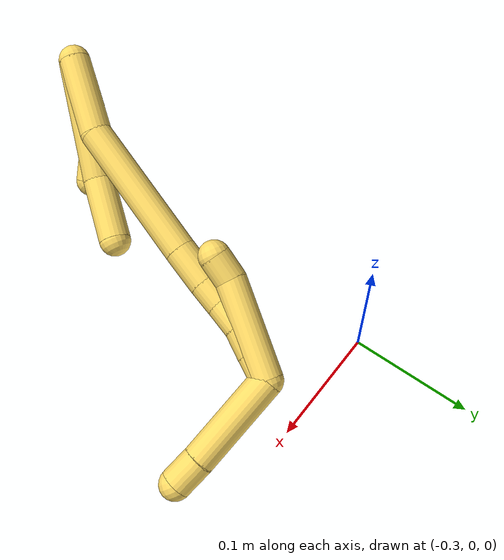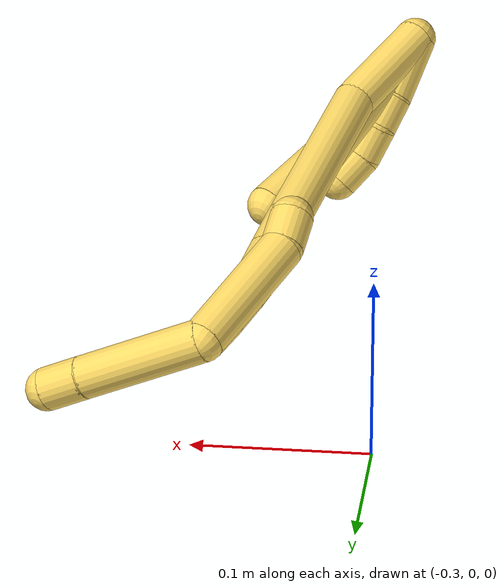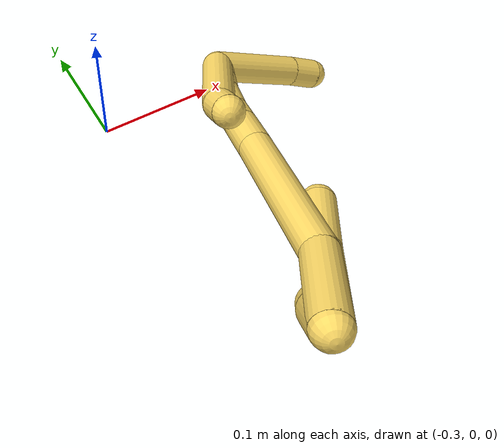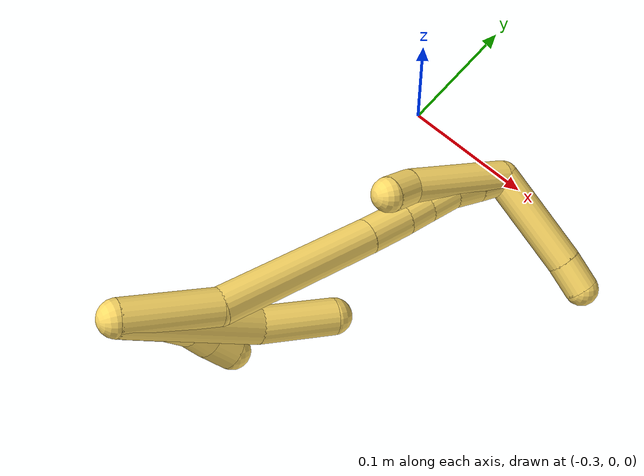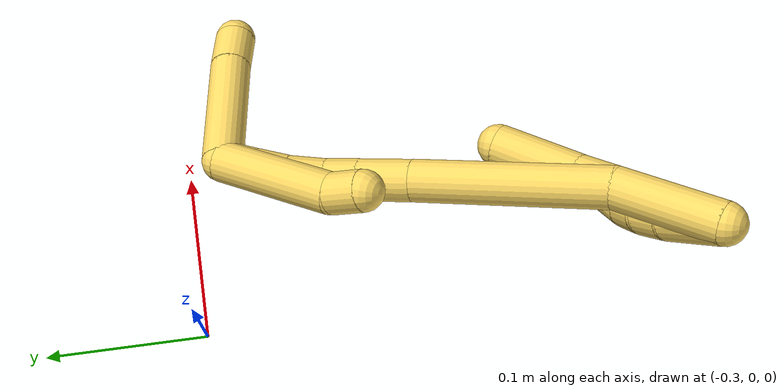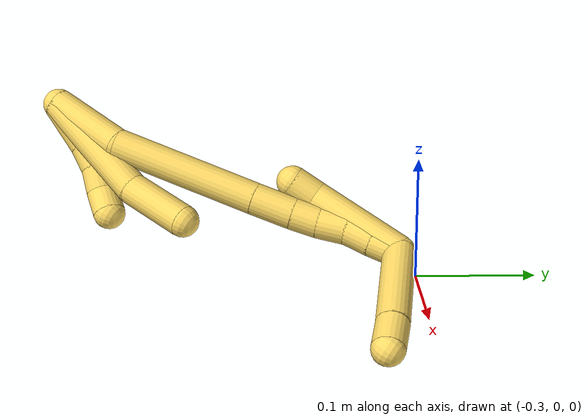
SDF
<sdf version="1.7">
 <world name="default">
  <model name="5">
   <static>0</static>
   <link name="5">
    <collision name="collision-cylinder-e_1_2_8">
     <pose>-0.005049 -0.010875 -0.047283 2.91553 -0.103697 -0.857579</pose>
     <geometry><cylinder><radius>0.0125</radius><length>0.097559</length></cylinder></geometry>
     <surface>
      <friction><ode><mu>1.16</mu><mu2>1.16</mu2><slip1>0</slip1><slip2>0</slip2></ode></friction>
      <contact><ode><kp>1e+06</kp><kd>1</kd><max_vel>0</max_vel><min_depth>0.001</min_depth></ode></contact>
     </surface>
    </collision>
    <visual name="visual-cylinder-e_1_2_8">
     <pose>-0.005049 -0.010875 -0.047283 2.91553 -0.103697 -0.857579</pose>
     <geometry><cylinder><radius>0.0125</radius><length>0.097559</length></cylinder></geometry>
     <material><ambient>1 0.858824 0.4 1</ambient></material>
    </visual>
    <collision name="collision-cylinder-e_2_8_6">
     <pose>-0.006171 -0.024569 -0.120337 3.03265 0.150335 1.88824</pose>
     <geometry><cylinder><radius>0.0125</radius><length>0.052441</length></cylinder></geometry>
     <surface>
      <friction><ode><mu>1.16</mu><mu2>1.16</mu2><slip1>0</slip1><slip2>0</slip2></ode></friction>
      <contact><ode><kp>1e+06</kp><kd>1</kd><max_vel>0</max_vel><min_depth>0.001</min_depth></ode></contact>
     </surface>
    </collision>
    <visual name="visual-cylinder-e_2_8_6">
     <pose>-0.006171 -0.024569 -0.120337 3.03265 0.150335 1.88824</pose>
     <geometry><cylinder><radius>0.0125</radius><length>0.052441</length></cylinder></geometry>
     <material><ambient>1 0.858824 0.4 1</ambient></material>
    </visual>
    <collision name="collision-cylinder-e_1_2_9">
     <pose>-0.007515 -0.003402 -0.018075 2.95554 -0.387905 -2.25472</pose>
     <geometry><cylinder><radius>0.0125</radius><length>0.039737</length></cylinder></geometry>
     <surface>
      <friction><ode><mu>1.16</mu><mu2>1.16</mu2><slip1>0</slip1><slip2>0</slip2></ode></friction>
      <contact><ode><kp>1e+06</kp><kd>1</kd><max_vel>0</max_vel><min_depth>0.001</min_depth></ode></contact>
     </surface>
    </collision>
    <visual name="visual-cylinder-e_1_2_9">
     <pose>-0.007515 -0.003402 -0.018075 2.95554 -0.387905 -2.25472</pose>
     <geometry><cylinder><radius>0.0125</radius><length>0.039737</length></cylinder></geometry>
     <material><ambient>1 0.858824 0.4 1</ambient></material>
    </visual>
    <collision name="collision-cylinder-e_2_9_10">
     <pose>-0.018962 -0.009859 -0.044915 2.80629 -0.400663 -1.75197</pose>
     <geometry><cylinder><radius>0.0125</radius><length>0.020161</length></cylinder></geometry>
     <surface>
      <friction><ode><mu>1.16</mu><mu2>1.16</mu2><slip1>0</slip1><slip2>0</slip2></ode></friction>
      <contact><ode><kp>1e+06</kp><kd>1</kd><max_vel>0</max_vel><min_depth>0.001</min_depth></ode></contact>
     </surface>
    </collision>
    <visual name="visual-cylinder-e_2_9_10">
     <pose>-0.018962 -0.009859 -0.044915 2.80629 -0.400663 -1.75197</pose>
     <geometry><cylinder><radius>0.0125</radius><length>0.020161</length></cylinder></geometry>
     <material><ambient>1 0.858824 0.4 1</ambient></material>
    </visual>
    <collision name="collision-cylinder-e_3_10_11">
     <pose>-0.027726 -0.017527 -0.061177 2.5899 -0.502032 -1.47212</pose>
     <geometry><cylinder><radius>0.0125</radius><length>0.020082</length></cylinder></geometry>
     <surface>
      <friction><ode><mu>1.16</mu><mu2>1.16</mu2><slip1>0</slip1><slip2>0</slip2></ode></friction>
      <contact><ode><kp>1e+06</kp><kd>1</kd><max_vel>0</max_vel><min_depth>0.001</min_depth></ode></contact>
     </surface>
    </collision>
    <visual name="visual-cylinder-e_3_10_11">
     <pose>-0.027726 -0.017527 -0.061177 2.5899 -0.502032 -1.47212</pose>
     <geometry><cylinder><radius>0.0125</radius><length>0.020082</length></cylinder></geometry>
     <material><ambient>1 0.858824 0.4 1</ambient></material>
    </visual>
    <collision name="collision-cylinder-e_4_11_5">
     <pose>-0.034654 -0.027501 -0.076862 2.56194 -0.210995 -0.682365</pose>
     <geometry><cylinder><radius>0.0125</radius><length>0.020019</length></cylinder></geometry>
     <surface>
      <friction><ode><mu>1.16</mu><mu2>1.16</mu2><slip1>0</slip1><slip2>0</slip2></ode></friction>
      <contact><ode><kp>1e+06</kp><kd>1</kd><max_vel>0</max_vel><min_depth>0.001</min_depth></ode></contact>
     </surface>
    </collision>
    <visual name="visual-cylinder-e_4_11_5">
     <pose>-0.034654 -0.027501 -0.076862 2.56194 -0.210995 -0.682365</pose>
     <geometry><cylinder><radius>0.0125</radius><length>0.020019</length></cylinder></geometry>
     <material><ambient>1 0.858824 0.4 1</ambient></material>
    </visual>
    <collision name="collision-cylinder-e_1_2_12">
     <pose>0.002788 -0.003164 -0.031927 3.0428 0.086692 1.44033</pose>
     <geometry><cylinder><radius>0.0125</radius><length>0.064409</length></cylinder></geometry>
     <surface>
      <friction><ode><mu>1.16</mu><mu2>1.16</mu2><slip1>0</slip1><slip2>0</slip2></ode></friction>
      <contact><ode><kp>1e+06</kp><kd>1</kd><max_vel>0</max_vel><min_depth>0.001</min_depth></ode></contact>
     </surface>
    </collision>
    <visual name="visual-cylinder-e_1_2_12">
     <pose>0.002788 -0.003164 -0.031927 3.0428 0.086692 1.44033</pose>
     <geometry><cylinder><radius>0.0125</radius><length>0.064409</length></cylinder></geometry>
     <material><ambient>1 0.858824 0.4 1</ambient></material>
    </visual>
    <collision name="collision-cylinder-e_2_12_13">
     <pose>0.009218 0.006306 -0.120462 -2.92199 0.062692 -0.554208</pose>
     <geometry><cylinder><radius>0.0125</radius><length>0.11623</length></cylinder></geometry>
     <surface>
      <friction><ode><mu>1.16</mu><mu2>1.16</mu2><slip1>0</slip1><slip2>0</slip2></ode></friction>
      <contact><ode><kp>1e+06</kp><kd>1</kd><max_vel>0</max_vel><min_depth>0.001</min_depth></ode></contact>
     </surface>
    </collision>
    <visual name="visual-cylinder-e_2_12_13">
     <pose>0.009218 0.006306 -0.120462 -2.92199 0.062692 -0.554208</pose>
     <geometry><cylinder><radius>0.0125</radius><length>0.11623</length></cylinder></geometry>
     <material><ambient>1 0.858824 0.4 1</ambient></material>
    </visual>
    <collision name="collision-cylinder-e_3_13_14">
     <pose>0.013825 0.02277 -0.192626 -2.90028 0.060263 -0.487313</pose>
     <geometry><cylinder><radius>0.0125</radius><length>0.032098</length></cylinder></geometry>
     <surface>
      <friction><ode><mu>1.16</mu><mu2>1.16</mu2><slip1>0</slip1><slip2>0</slip2></ode></friction>
      <contact><ode><kp>1e+06</kp><kd>1</kd><max_vel>0</max_vel><min_depth>0.001</min_depth></ode></contact>
     </surface>
    </collision>
    <visual name="visual-cylinder-e_3_13_14">
     <pose>0.013825 0.02277 -0.192626 -2.90028 0.060263 -0.487313</pose>
     <geometry><cylinder><radius>0.0125</radius><length>0.032098</length></cylinder></geometry>
     <material><ambient>1 0.858824 0.4 1</ambient></material>
    </visual>
    <collision name="collision-cylinder-e_4_14_15">
     <pose>0.015661 0.029415 -0.218106 -2.86505 0.084062 -0.586968</pose>
     <geometry><cylinder><radius>0.0125</radius><length>0.020706</length></cylinder></geometry>
     <surface>
      <friction><ode><mu>1.16</mu><mu2>1.16</mu2><slip1>0</slip1><slip2>0</slip2></ode></friction>
      <contact><ode><kp>1e+06</kp><kd>1</kd><max_vel>0</max_vel><min_depth>0.001</min_depth></ode></contact>
     </surface>
    </collision>
    <visual name="visual-cylinder-e_4_14_15">
     <pose>0.015661 0.029415 -0.218106 -2.86505 0.084062 -0.586968</pose>
     <geometry><cylinder><radius>0.0125</radius><length>0.020706</length></cylinder></geometry>
     <material><ambient>1 0.858824 0.4 1</ambient></material>
    </visual>
    <collision name="collision-cylinder-e_5_15_16">
     <pose>0.019014 0.035305 -0.238835 -2.86446 0.217576 -1.32879</pose>
     <geometry><cylinder><radius>0.0125</radius><length>0.023008</length></cylinder></geometry>
     <surface>
      <friction><ode><mu>1.16</mu><mu2>1.16</mu2><slip1>0</slip1><slip2>0</slip2></ode></friction>
      <contact><ode><kp>1e+06</kp><kd>1</kd><max_vel>0</max_vel><min_depth>0.001</min_depth></ode></contact>
     </surface>
    </collision>
    <visual name="visual-cylinder-e_5_15_16">
     <pose>0.019014 0.035305 -0.238835 -2.86446 0.217576 -1.32879</pose>
     <geometry><cylinder><radius>0.0125</radius><length>0.023008</length></cylinder></geometry>
     <material><ambient>1 0.858824 0.4 1</ambient></material>
    </visual>
    <collision name="collision-cylinder-e_6_16_17">
     <pose>0.02279 0.038957 -0.260409 -3.08789 0.119269 -2.29617</pose>
     <geometry><cylinder><radius>0.0125</radius><length>0.021725</length></cylinder></geometry>
     <surface>
      <friction><ode><mu>1.16</mu><mu2>1.16</mu2><slip1>0</slip1><slip2>0</slip2></ode></friction>
      <contact><ode><kp>1e+06</kp><kd>1</kd><max_vel>0</max_vel><min_depth>0.001</min_depth></ode></contact>
     </surface>
    </collision>
    <visual name="visual-cylinder-e_6_16_17">
     <pose>0.02279 0.038957 -0.260409 -3.08789 0.119269 -2.29617</pose>
     <geometry><cylinder><radius>0.0125</radius><length>0.021725</length></cylinder></geometry>
     <material><ambient>1 0.858824 0.4 1</ambient></material>
    </visual>
    <collision name="collision-cylinder-e_7_17_1">
     <pose>0.026026 0.04032 -0.281887 -3.06852 0.179131 -2.36852</pose>
     <geometry><cylinder><radius>0.0125</radius><length>0.021824</length></cylinder></geometry>
     <surface>
      <friction><ode><mu>1.16</mu><mu2>1.16</mu2><slip1>0</slip1><slip2>0</slip2></ode></friction>
      <contact><ode><kp>1e+06</kp><kd>1</kd><max_vel>0</max_vel><min_depth>0.001</min_depth></ode></contact>
     </surface>
    </collision>
    <visual name="visual-cylinder-e_7_17_1">
     <pose>0.026026 0.04032 -0.281887 -3.06852 0.179131 -2.36852</pose>
     <geometry><cylinder><radius>0.0125</radius><length>0.021824</length></cylinder></geometry>
     <material><ambient>1 0.858824 0.4 1</ambient></material>
    </visual>
    <collision name="collision-cylinder-e_1_1_18">
     <pose>0.029836 0.006935 -0.308642 2.00984 0.049394 0.077743</pose>
     <geometry><cylinder><radius>0.0125</radius><length>0.07559</length></cylinder></geometry>
     <surface>
      <friction><ode><mu>1.16</mu><mu2>1.16</mu2><slip1>0</slip1><slip2>0</slip2></ode></friction>
      <contact><ode><kp>1e+06</kp><kd>1</kd><max_vel>0</max_vel><min_depth>0.001</min_depth></ode></contact>
     </surface>
    </collision>
    <visual name="visual-cylinder-e_1_1_18">
     <pose>0.029836 0.006935 -0.308642 2.00984 0.049394 0.077743</pose>
     <geometry><cylinder><radius>0.0125</radius><length>0.07559</length></cylinder></geometry>
     <material><ambient>1 0.858824 0.4 1</ambient></material>
    </visual>
    <collision name="collision-cylinder-e_2_18_4">
     <pose>0.031802 -0.038539 -0.329285 1.95694 0.008124 0.012073</pose>
     <geometry><cylinder><radius>0.0125</radius><length>0.02441</length></cylinder></geometry>
     <surface>
      <friction><ode><mu>1.16</mu><mu2>1.16</mu2><slip1>0</slip1><slip2>0</slip2></ode></friction>
      <contact><ode><kp>1e+06</kp><kd>1</kd><max_vel>0</max_vel><min_depth>0.001</min_depth></ode></contact>
     </surface>
    </collision>
    <visual name="visual-cylinder-e_2_18_4">
     <pose>0.031802 -0.038539 -0.329285 1.95694 0.008124 0.012073</pose>
     <geometry><cylinder><radius>0.0125</radius><length>0.02441</length></cylinder></geometry>
     <material><ambient>1 0.858824 0.4 1</ambient></material>
    </visual>
    <collision name="collision-cylinder-e_1_1_19">
     <pose>0.025919 0.043536 -0.253562 -0.062219 -0.05241 0.001631</pose>
     <geometry><cylinder><radius>0.0125</radius><length>0.078327</length></cylinder></geometry>
     <surface>
      <friction><ode><mu>1.16</mu><mu2>1.16</mu2><slip1>0</slip1><slip2>0</slip2></ode></friction>
      <contact><ode><kp>1e+06</kp><kd>1</kd><max_vel>0</max_vel><min_depth>0.001</min_depth></ode></contact>
     </surface>
    </collision>
    <visual name="visual-cylinder-e_1_1_19">
     <pose>0.025919 0.043536 -0.253562 -0.062219 -0.05241 0.001631</pose>
     <geometry><cylinder><radius>0.0125</radius><length>0.078327</length></cylinder></geometry>
     <material><ambient>1 0.858824 0.4 1</ambient></material>
    </visual>
    <collision name="collision-cylinder-e_2_19_3">
     <pose>0.025795 0.044153 -0.20402 0.171023 0.178826 0.01537</pose>
     <geometry><cylinder><radius>0.0125</radius><length>0.021673</length></cylinder></geometry>
     <surface>
      <friction><ode><mu>1.16</mu><mu2>1.16</mu2><slip1>0</slip1><slip2>0</slip2></ode></friction>
      <contact><ode><kp>1e+06</kp><kd>1</kd><max_vel>0</max_vel><min_depth>0.001</min_depth></ode></contact>
     </surface>
    </collision>
    <visual name="visual-cylinder-e_2_19_3">
     <pose>0.025795 0.044153 -0.20402 0.171023 0.178826 0.01537</pose>
     <geometry><cylinder><radius>0.0125</radius><length>0.021673</length></cylinder></geometry>
     <material><ambient>1 0.858824 0.4 1</ambient></material>
    </visual>
    <collision name="collision-sphere-3">
     <pose>0.027722 0.042338 -0.193511 0 -0 0</pose>
     <geometry><sphere><radius>0.0125</radius></sphere></geometry>
     <surface>
      <friction><ode><mu>1.16</mu><mu2>1.16</mu2><slip1>0</slip1><slip2>0</slip2></ode></friction>
      <contact><ode><kp>1e+06</kp><kd>1</kd><max_vel>0</max_vel><min_depth>0.001</min_depth></ode></contact>
     </surface>
    </collision>
    <visual name="visual-sphere-3">
     <pose>0.027722 0.042338 -0.193511 0 -0 0</pose>
     <geometry><sphere><radius>0.0125</radius></sphere></geometry>
     <material><ambient>1 0.858824 0.4 1</ambient></material>
    </visual>
    <collision name="collision-sphere-19">
     <pose>0.023867 0.045967 -0.214528 0 -0 0</pose>
     <geometry><sphere><radius>0.0125</radius></sphere></geometry>
     <surface>
      <friction><ode><mu>1.16</mu><mu2>1.16</mu2><slip1>0</slip1><slip2>0</slip2></ode></friction>
      <contact><ode><kp>1e+06</kp><kd>1</kd><max_vel>0</max_vel><min_depth>0.001</min_depth></ode></contact>
     </surface>
    </collision>
    <visual name="visual-sphere-19">
     <pose>0.023867 0.045967 -0.214528 0 -0 0</pose>
     <geometry><sphere><radius>0.0125</radius></sphere></geometry>
     <material><ambient>1 0.858824 0.4 1</ambient></material>
    </visual>
    <collision name="collision-sphere-11">
     <pose>-0.032558 -0.02214 -0.068673 0 -0 0</pose>
     <geometry><sphere><radius>0.0125</radius></sphere></geometry>
     <surface>
      <friction><ode><mu>1.16</mu><mu2>1.16</mu2><slip1>0</slip1><slip2>0</slip2></ode></friction>
      <contact><ode><kp>1e+06</kp><kd>1</kd><max_vel>0</max_vel><min_depth>0.001</min_depth></ode></contact>
     </surface>
    </collision>
    <visual name="visual-sphere-11">
     <pose>-0.032558 -0.02214 -0.068673 0 -0 0</pose>
     <geometry><sphere><radius>0.0125</radius></sphere></geometry>
     <material><ambient>1 0.858824 0.4 1</ambient></material>
    </visual>
    <collision name="collision-sphere-10">
     <pose>-0.022894 -0.012913 -0.053681 0 -0 0</pose>
     <geometry><sphere><radius>0.0125</radius></sphere></geometry>
     <surface>
      <friction><ode><mu>1.16</mu><mu2>1.16</mu2><slip1>0</slip1><slip2>0</slip2></ode></friction>
      <contact><ode><kp>1e+06</kp><kd>1</kd><max_vel>0</max_vel><min_depth>0.001</min_depth></ode></contact>
     </surface>
    </collision>
    <visual name="visual-sphere-10">
     <pose>-0.022894 -0.012913 -0.053681 0 -0 0</pose>
     <geometry><sphere><radius>0.0125</radius></sphere></geometry>
     <material><ambient>1 0.858824 0.4 1</ambient></material>
    </visual>
    <collision name="collision-sphere-6">
     <pose>-0.002244 -0.027388 -0.146108 0 -0 0</pose>
     <geometry><sphere><radius>0.0125</radius></sphere></geometry>
     <surface>
      <friction><ode><mu>1.16</mu><mu2>1.16</mu2><slip1>0</slip1><slip2>0</slip2></ode></friction>
      <contact><ode><kp>1e+06</kp><kd>1</kd><max_vel>0</max_vel><min_depth>0.001</min_depth></ode></contact>
     </surface>
    </collision>
    <visual name="visual-sphere-6">
     <pose>-0.002244 -0.027388 -0.146108 0 -0 0</pose>
     <geometry><sphere><radius>0.0125</radius></sphere></geometry>
     <material><ambient>1 0.858824 0.4 1</ambient></material>
    </visual>
    <collision name="collision-sphere-9">
     <pose>-0.015031 -0.006805 -0.03615 0 -0 0</pose>
     <geometry><sphere><radius>0.0125</radius></sphere></geometry>
     <surface>
      <friction><ode><mu>1.16</mu><mu2>1.16</mu2><slip1>0</slip1><slip2>0</slip2></ode></friction>
      <contact><ode><kp>1e+06</kp><kd>1</kd><max_vel>0</max_vel><min_depth>0.001</min_depth></ode></contact>
     </surface>
    </collision>
    <visual name="visual-sphere-9">
     <pose>-0.015031 -0.006805 -0.03615 0 -0 0</pose>
     <geometry><sphere><radius>0.0125</radius></sphere></geometry>
     <material><ambient>1 0.858824 0.4 1</ambient></material>
    </visual>
    <collision name="collision-sphere-2">
     <geometry><sphere><radius>0.0125</radius></sphere></geometry>
     <surface>
      <friction><ode><mu>1.16</mu><mu2>1.16</mu2><slip1>0</slip1><slip2>0</slip2></ode></friction>
      <contact><ode><kp>1e+06</kp><kd>1</kd><max_vel>0</max_vel><min_depth>0.001</min_depth></ode></contact>
     </surface>
    </collision>
    <visual name="visual-sphere-2">
     <geometry><sphere><radius>0.0125</radius></sphere></geometry>
     <material><ambient>1 0.858824 0.4 1</ambient></material>
    </visual>
    <collision name="collision-sphere-8">
     <pose>-0.010098 -0.02175 -0.094566 0 -0 0</pose>
     <geometry><sphere><radius>0.0125</radius></sphere></geometry>
     <surface>
      <friction><ode><mu>1.16</mu><mu2>1.16</mu2><slip1>0</slip1><slip2>0</slip2></ode></friction>
      <contact><ode><kp>1e+06</kp><kd>1</kd><max_vel>0</max_vel><min_depth>0.001</min_depth></ode></contact>
     </surface>
    </collision>
    <visual name="visual-sphere-8">
     <pose>-0.010098 -0.02175 -0.094566 0 -0 0</pose>
     <geometry><sphere><radius>0.0125</radius></sphere></geometry>
     <material><ambient>1 0.858824 0.4 1</ambient></material>
    </visual>
    <collision name="collision-sphere-5">
     <pose>-0.036751 -0.032862 -0.085051 0 -0 0</pose>
     <geometry><sphere><radius>0.0125</radius></sphere></geometry>
     <surface>
      <friction><ode><mu>1.16</mu><mu2>1.16</mu2><slip1>0</slip1><slip2>0</slip2></ode></friction>
      <contact><ode><kp>1e+06</kp><kd>1</kd><max_vel>0</max_vel><min_depth>0.001</min_depth></ode></contact>
     </surface>
    </collision>
    <visual name="visual-sphere-5">
     <pose>-0.036751 -0.032862 -0.085051 0 -0 0</pose>
     <geometry><sphere><radius>0.0125</radius></sphere></geometry>
     <material><ambient>1 0.858824 0.4 1</ambient></material>
    </visual>
    <collision name="collision-sphere-12">
     <pose>0.005577 -0.006329 -0.063854 0 -0 0</pose>
     <geometry><sphere><radius>0.0125</radius></sphere></geometry>
     <surface>
      <friction><ode><mu>1.16</mu><mu2>1.16</mu2><slip1>0</slip1><slip2>0</slip2></ode></friction>
      <contact><ode><kp>1e+06</kp><kd>1</kd><max_vel>0</max_vel><min_depth>0.001</min_depth></ode></contact>
     </surface>
    </collision>
    <visual name="visual-sphere-12">
     <pose>0.005577 -0.006329 -0.063854 0 -0 0</pose>
     <geometry><sphere><radius>0.0125</radius></sphere></geometry>
     <material><ambient>1 0.858824 0.4 1</ambient></material>
    </visual>
    <collision name="collision-sphere-13">
     <pose>0.012859 0.018941 -0.17707 0 -0 0</pose>
     <geometry><sphere><radius>0.0125</radius></sphere></geometry>
     <surface>
      <friction><ode><mu>1.16</mu><mu2>1.16</mu2><slip1>0</slip1><slip2>0</slip2></ode></friction>
      <contact><ode><kp>1e+06</kp><kd>1</kd><max_vel>0</max_vel><min_depth>0.001</min_depth></ode></contact>
     </surface>
    </collision>
    <visual name="visual-sphere-13">
     <pose>0.012859 0.018941 -0.17707 0 -0 0</pose>
     <geometry><sphere><radius>0.0125</radius></sphere></geometry>
     <material><ambient>1 0.858824 0.4 1</ambient></material>
    </visual>
    <collision name="collision-sphere-14">
     <pose>0.014792 0.026598 -0.208181 0 -0 0</pose>
     <geometry><sphere><radius>0.0125</radius></sphere></geometry>
     <surface>
      <friction><ode><mu>1.16</mu><mu2>1.16</mu2><slip1>0</slip1><slip2>0</slip2></ode></friction>
      <contact><ode><kp>1e+06</kp><kd>1</kd><max_vel>0</max_vel><min_depth>0.001</min_depth></ode></contact>
     </surface>
    </collision>
    <visual name="visual-sphere-14">
     <pose>0.014792 0.026598 -0.208181 0 -0 0</pose>
     <geometry><sphere><radius>0.0125</radius></sphere></geometry>
     <material><ambient>1 0.858824 0.4 1</ambient></material>
    </visual>
    <collision name="collision-sphere-15">
     <pose>0.01653 0.032232 -0.228031 0 -0 0</pose>
     <geometry><sphere><radius>0.0125</radius></sphere></geometry>
     <surface>
      <friction><ode><mu>1.16</mu><mu2>1.16</mu2><slip1>0</slip1><slip2>0</slip2></ode></friction>
      <contact><ode><kp>1e+06</kp><kd>1</kd><max_vel>0</max_vel><min_depth>0.001</min_depth></ode></contact>
     </surface>
    </collision>
    <visual name="visual-sphere-15">
     <pose>0.01653 0.032232 -0.228031 0 -0 0</pose>
     <geometry><sphere><radius>0.0125</radius></sphere></geometry>
     <material><ambient>1 0.858824 0.4 1</ambient></material>
    </visual>
    <collision name="collision-sphere-16">
     <pose>0.021497 0.038378 -0.249639 0 -0 0</pose>
     <geometry><sphere><radius>0.0125</radius></sphere></geometry>
     <surface>
      <friction><ode><mu>1.16</mu><mu2>1.16</mu2><slip1>0</slip1><slip2>0</slip2></ode></friction>
      <contact><ode><kp>1e+06</kp><kd>1</kd><max_vel>0</max_vel><min_depth>0.001</min_depth></ode></contact>
     </surface>
    </collision>
    <visual name="visual-sphere-16">
     <pose>0.021497 0.038378 -0.249639 0 -0 0</pose>
     <geometry><sphere><radius>0.0125</radius></sphere></geometry>
     <material><ambient>1 0.858824 0.4 1</ambient></material>
    </visual>
    <collision name="collision-sphere-17">
     <pose>0.024082 0.039536 -0.271179 0 -0 0</pose>
     <geometry><sphere><radius>0.0125</radius></sphere></geometry>
     <surface>
      <friction><ode><mu>1.16</mu><mu2>1.16</mu2><slip1>0</slip1><slip2>0</slip2></ode></friction>
      <contact><ode><kp>1e+06</kp><kd>1</kd><max_vel>0</max_vel><min_depth>0.001</min_depth></ode></contact>
     </surface>
    </collision>
    <visual name="visual-sphere-17">
     <pose>0.024082 0.039536 -0.271179 0 -0 0</pose>
     <geometry><sphere><radius>0.0125</radius></sphere></geometry>
     <material><ambient>1 0.858824 0.4 1</ambient></material>
    </visual>
    <collision name="collision-sphere-1">
     <pose>0.02797 0.041104 -0.292596 0 -0 0</pose>
     <geometry><sphere><radius>0.0125</radius></sphere></geometry>
     <surface>
      <friction><ode><mu>1.16</mu><mu2>1.16</mu2><slip1>0</slip1><slip2>0</slip2></ode></friction>
      <contact><ode><kp>1e+06</kp><kd>1</kd><max_vel>0</max_vel><min_depth>0.001</min_depth></ode></contact>
     </surface>
    </collision>
    <visual name="visual-sphere-1">
     <pose>0.02797 0.041104 -0.292596 0 -0 0</pose>
     <geometry><sphere><radius>0.0125</radius></sphere></geometry>
     <material><ambient>1 0.858824 0.4 1</ambient></material>
    </visual>
    <collision name="collision-sphere-18">
     <pose>0.031703 -0.027234 -0.324688 0 -0 0</pose>
     <geometry><sphere><radius>0.0125</radius></sphere></geometry>
     <surface>
      <friction><ode><mu>1.16</mu><mu2>1.16</mu2><slip1>0</slip1><slip2>0</slip2></ode></friction>
      <contact><ode><kp>1e+06</kp><kd>1</kd><max_vel>0</max_vel><min_depth>0.001</min_depth></ode></contact>
     </surface>
    </collision>
    <visual name="visual-sphere-18">
     <pose>0.031703 -0.027234 -0.324688 0 -0 0</pose>
     <geometry><sphere><radius>0.0125</radius></sphere></geometry>
     <material><ambient>1 0.858824 0.4 1</ambient></material>
    </visual>
    <collision name="collision-sphere-4">
     <pose>0.031901 -0.049845 -0.333881 0 -0 0</pose>
     <geometry><sphere><radius>0.0125</radius></sphere></geometry>
     <surface>
      <friction><ode><mu>1.16</mu><mu2>1.16</mu2><slip1>0</slip1><slip2>0</slip2></ode></friction>
      <contact><ode><kp>1e+06</kp><kd>1</kd><max_vel>0</max_vel><min_depth>0.001</min_depth></ode></contact>
     </surface>
    </collision>
    <visual name="visual-sphere-4">
     <pose>0.031901 -0.049845 -0.333881 0 -0 0</pose>
     <geometry><sphere><radius>0.0125</radius></sphere></geometry>
     <material><ambient>1 0.858824 0.4 1</ambient></material>
    </visual>
    <inertial>
     <pose>0.008524 0.006363 -0.153368 0 -0 0</pose>
     <mass>0.75</mass>
     <inertia>
      <ixx>0.000145</ixx>
      <ixy>0</ixy>
      <ixz>0</ixz>
      <iyy>-0.000246</iyy>
      <iyz>0</iyz>
      <izz>-9e-06</izz>
     </inertia>
    </inertial>
   </link>
   <pose>-0.30002 -0.288504 0.146921 0.565876 -1.01879 0.476485</pose>
  </model>
 </world>
</sdf>
